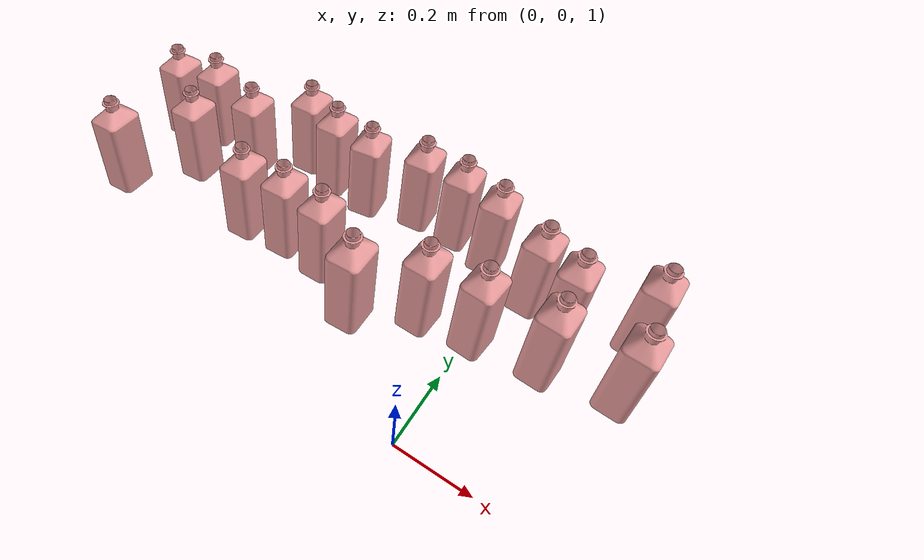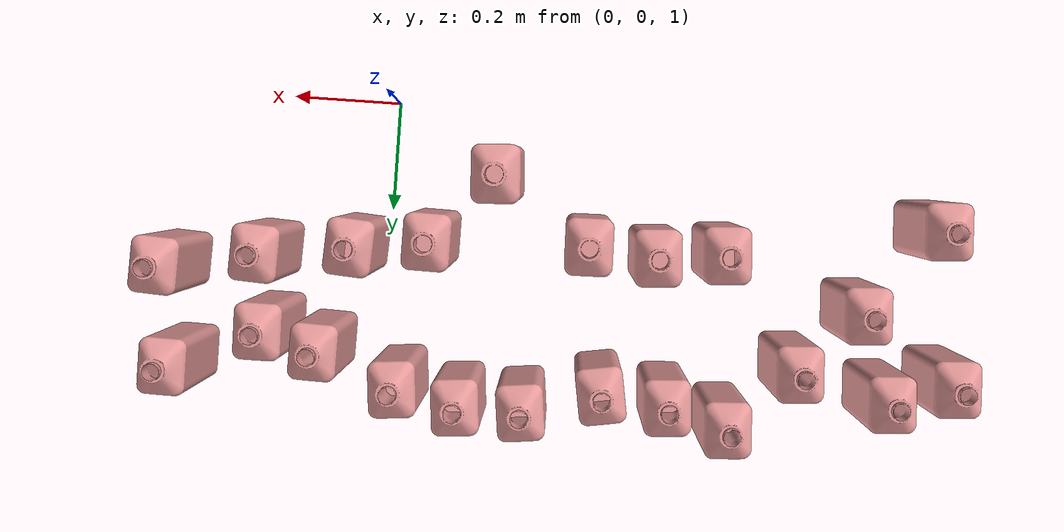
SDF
<sdf version="1.7">
 <world name="default">
  <plugin name="attach_detach_plugin" filename="libattach_detach.so"/>
  <gravity>0 0 -9.8</gravity>
  <physics name="default_physics" default="0" type="ode">
   <max_step_size>0.001</max_step_size>
   <real_time_factor>1</real_time_factor>
   <real_time_update_rate>1000</real_time_update_rate>
  </physics>
  <light name="Warehouse_CeilingLight_003" type="point">
   <pose>0 0 9 0 -0 0</pose>
   <diffuse>0.5 0.5 0.5 1</diffuse>
   <specular>0.2 0.2 0.2 1</specular>
   <attenuation>
    <range>80</range>
    <constant>0.3</constant>
    <linear>0.01</linear>
    <quadratic>0.001</quadratic>
   </attenuation>
   <direction>0.1 0.1 -1</direction>
   <spot><inner_angle>0</inner_angle><outer_angle>0</outer_angle><falloff>0</falloff></spot>
  </light>
  <magnetic_field>6e-06 2.3e-05 -4.2e-05</magnetic_field>
  <atmosphere type="adiabatic"/>
  <scene><ambient>0.4 0.4 0.4 1</ambient><background>0.7 0.7 0.7 1</background><shadows>1</shadows></scene>
  <audio><device>default</device></audio>
  <spherical_coordinates>
   <surface_model>EARTH_WGS84</surface_model>
   <latitude_deg>0</latitude_deg>
   <longitude_deg>0</longitude_deg>
   <elevation>0</elevation>
   <heading_deg>0</heading_deg>
  </spherical_coordinates>
  <model name="medicine_box">
   <static>0</static>
   <link name="link">
    <inertial>
     <mass>0.1</mass>
     <inertia><ixx>0.0001</ixx><iyy>0.0001</iyy><izz>0.0001</izz><ixy>0</ixy><ixz>0</ixz><iyz>0</iyz></inertia>
    </inertial>
    <visual name="visual">
     <geometry>
      <mesh><uri>model://medicine_box/meshes/medicine_box.stl</uri><scale>0.001 0.001 0.001</scale></mesh>
     </geometry>
     <material><ambient>0.9 0.3 0.3 1</ambient><diffuse>0.9 0.6 0.6 1</diffuse></material>
    </visual>
    <collision name="collision"><geometry><box><size>0.08 0.04 0.02</size></box></geometry></collision>
   </link>
   <pose>0.029138 0.263219 1.10898 1.48879 -0.005494 -0.066749</pose>
  </model>
  <model name="medicine_box_0">
   <static>0</static>
   <link name="link">
    <inertial>
     <mass>0.1</mass>
     <inertia><ixx>0.0001</ixx><iyy>0.0001</iyy><izz>0.0001</izz><ixy>0</ixy><ixz>0</ixz><iyz>0</iyz></inertia>
    </inertial>
    <visual name="visual">
     <geometry>
      <mesh><uri>model://medicine_box/meshes/medicine_box.stl</uri><scale>0.001 0.001 0.001</scale></mesh>
     </geometry>
     <material><ambient>0.9 0.3 0.3 1</ambient><diffuse>0.9 0.6 0.6 1</diffuse></material>
    </visual>
    <collision name="collision"><geometry><box><size>0.08 0.04 0.02</size></box></geometry></collision>
   </link>
   <pose>-0.208023 0.130326 1.17676 1.48871 0.004076 0.051414</pose>
  </model>
  <model name="medicine_box_clone">
   <static>0</static>
   <link name="link">
    <inertial>
     <mass>0.1</mass>
     <inertia><ixx>0.0001</ixx><iyy>0.0001</iyy><izz>0.0001</izz><ixy>0</ixy><ixz>0</ixz><iyz>0</iyz></inertia>
    </inertial>
    <visual name="visual">
     <geometry>
      <mesh><uri>model://medicine_box/meshes/medicine_box.stl</uri><scale>0.001 0.001 0.001</scale></mesh>
     </geometry>
     <material><ambient>0.9 0.3 0.3 1</ambient><diffuse>0.9 0.6 0.6 1</diffuse></material>
    </visual>
    <collision name="collision"><geometry><box><size>0.08 0.04 0.02</size></box></geometry></collision>
   </link>
   <pose>0.172631 0.412649 1.09667 1.48861 0.000118 0.00143</pose>
  </model>
  <model name="medicine_box_0_clone">
   <static>0</static>
   <link name="link">
    <inertial>
     <mass>0.1</mass>
     <inertia><ixx>0.0001</ixx><iyy>0.0001</iyy><izz>0.0001</izz><ixy>0</ixy><ixz>0</ixz><iyz>0</iyz></inertia>
    </inertial>
    <visual name="visual">
     <geometry>
      <mesh><uri>model://medicine_box/meshes/medicine_box.stl</uri><scale>0.001 0.001 0.001</scale></mesh>
     </geometry>
     <material><ambient>0.9 0.3 0.3 1</ambient><diffuse>0.9 0.6 0.6 1</diffuse></material>
    </visual>
    <collision name="collision"><geometry><box><size>0.08 0.04 0.02</size></box></geometry></collision>
   </link>
   <pose>-0.161614 0.51702 1.08807 1.48891 0.007069 0.085429</pose>
  </model>
  <model name="medicine_box_0_clone_clone">
   <static>0</static>
   <link name="link">
    <inertial>
     <mass>0.1</mass>
     <inertia><ixx>0.0001</ixx><iyy>0.0001</iyy><izz>0.0001</izz><ixy>0</ixy><ixz>0</ixz><iyz>0</iyz></inertia>
    </inertial>
    <visual name="visual">
     <geometry>
      <mesh><uri>model://medicine_box/meshes/medicine_box.stl</uri><scale>0.001 0.001 0.001</scale></mesh>
     </geometry>
     <material><ambient>0.9 0.3 0.3 1</ambient><diffuse>0.9 0.6 0.6 1</diffuse></material>
    </visual>
    <collision name="collision"><geometry><box><size>0.08 0.04 0.02</size></box></geometry></collision>
   </link>
   <pose>-0.270931 0.518319 1.08797 1.48916 0.009483 0.115383</pose>
  </model>
  <model name="medicine_box_0_clone_clone_0">
   <static>0</static>
   <link name="link">
    <inertial>
     <mass>0.1</mass>
     <inertia><ixx>0.0001</ixx><iyy>0.0001</iyy><izz>0.0001</izz><ixy>0</ixy><ixz>0</ixz><iyz>0</iyz></inertia>
    </inertial>
    <visual name="visual">
     <geometry>
      <mesh><uri>model://medicine_box/meshes/medicine_box.stl</uri><scale>0.001 0.001 0.001</scale></mesh>
     </geometry>
     <material><ambient>0.9 0.3 0.3 1</ambient><diffuse>0.9 0.6 0.6 1</diffuse></material>
    </visual>
    <collision name="collision"><geometry><box><size>0.08 0.04 0.02</size></box></geometry></collision>
   </link>
   <pose>-0.403211 0.480747 1.09106 1.48976 0.013722 0.167375</pose>
  </model>
  <model name="medicine_box_0_clone_clone_1">
   <static>0</static>
   <link name="link">
    <inertial>
     <mass>0.1</mass>
     <inertia><ixx>0.0001</ixx><iyy>0.0001</iyy><izz>0.0001</izz><ixy>0</ixy><ixz>0</ixz><iyz>0</iyz></inertia>
    </inertial>
    <visual name="visual">
     <geometry>
      <mesh><uri>model://medicine_box/meshes/medicine_box.stl</uri><scale>0.001 0.001 0.001</scale></mesh>
     </geometry>
     <material><ambient>0.9 0.3 0.3 1</ambient><diffuse>0.9 0.6 0.6 1</diffuse></material>
    </visual>
    <collision name="collision"><geometry><box><size>0.08 0.04 0.02</size></box></geometry></collision>
   </link>
   <pose>-0.618018 0.523674 1.08752 1.48878 0.005235 0.063776</pose>
  </model>
  <model name="medicine_box_0_clone_clone_2">
   <static>0</static>
   <link name="link">
    <inertial>
     <mass>0.1</mass>
     <inertia><ixx>0.0001</ixx><iyy>0.0001</iyy><izz>0.0001</izz><ixy>0</ixy><ixz>0</ixz><iyz>0</iyz></inertia>
    </inertial>
    <visual name="visual">
     <geometry>
      <mesh><uri>model://medicine_box/meshes/medicine_box.stl</uri><scale>0.001 0.001 0.001</scale></mesh>
     </geometry>
     <material><ambient>0.9 0.3 0.3 1</ambient><diffuse>0.9 0.6 0.6 1</diffuse></material>
    </visual>
    <collision name="collision"><geometry><box><size>0.08 0.04 0.02</size></box></geometry></collision>
   </link>
   <pose>0.078814 0.440722 1.09435 1.48862 -0.002278 -0.027653</pose>
  </model>
  <model name="medicine_box_0_clone_clone_3">
   <static>0</static>
   <link name="link">
    <inertial>
     <mass>0.1</mass>
     <inertia><ixx>0.0001</ixx><iyy>0.0001</iyy><izz>0.0001</izz><ixy>0</ixy><ixz>0</ixz><iyz>0</iyz></inertia>
    </inertial>
    <visual name="visual">
     <geometry>
      <mesh><uri>model://medicine_box/meshes/medicine_box.stl</uri><scale>0.001 0.001 0.001</scale></mesh>
     </geometry>
     <material><ambient>0.9 0.3 0.3 1</ambient><diffuse>0.9 0.6 0.6 1</diffuse></material>
    </visual>
    <collision name="collision"><geometry><box><size>0.08 0.04 0.02</size></box></geometry></collision>
   </link>
   <pose>-0.055196 0.494086 1.08996 1.48891 0.006929 0.084482</pose>
  </model>
  <model name="medicine_box_0_clone_clone_4">
   <static>0</static>
   <link name="link">
    <inertial>
     <mass>0.1</mass>
     <inertia><ixx>0.0001</ixx><iyy>0.0001</iyy><izz>0.0001</izz><ixy>0</ixy><ixz>0</ixz><iyz>0</iyz></inertia>
    </inertial>
    <visual name="visual">
     <geometry>
      <mesh><uri>model://medicine_box/meshes/medicine_box.stl</uri><scale>0.001 0.001 0.001</scale></mesh>
     </geometry>
     <material><ambient>0.9 0.3 0.3 1</ambient><diffuse>0.9 0.6 0.6 1</diffuse></material>
    </visual>
    <collision name="collision"><geometry><box><size>0.08 0.04 0.02</size></box></geometry></collision>
   </link>
   <pose>0.184435 0.283386 1.10731 1.48871 -0.003985 -0.0498</pose>
  </model>
  <model name="medicine_box_0_clone_clone_5">
   <static>0</static>
   <link name="link">
    <inertial>
     <mass>0.1</mass>
     <inertia><ixx>0.0001</ixx><iyy>0.0001</iyy><izz>0.0001</izz><ixy>0</ixy><ixz>0</ixz><iyz>0</iyz></inertia>
    </inertial>
    <visual name="visual">
     <geometry>
      <mesh><uri>model://medicine_box/meshes/medicine_box.stl</uri><scale>0.001 0.001 0.001</scale></mesh>
     </geometry>
     <material><ambient>0.9 0.3 0.3 1</ambient><diffuse>0.9 0.6 0.6 1</diffuse></material>
    </visual>
    <collision name="collision"><geometry><box><size>0.08 0.04 0.02</size></box></geometry></collision>
   </link>
   <pose>-0.098095 0.245801 1.11041 1.48862 -0.001088 -0.013203</pose>
  </model>
  <model name="medicine_box_0_clone_clone_6">
   <static>0</static>
   <link name="link">
    <inertial>
     <mass>0.1</mass>
     <inertia><ixx>0.0001</ixx><iyy>0.0001</iyy><izz>0.0001</izz><ixy>0</ixy><ixz>0</ixz><iyz>0</iyz></inertia>
    </inertial>
    <visual name="visual">
     <geometry>
      <mesh><uri>model://medicine_box/meshes/medicine_box.stl</uri><scale>0.001 0.001 0.001</scale></mesh>
     </geometry>
     <material><ambient>0.9 0.3 0.3 1</ambient><diffuse>0.9 0.6 0.6 1</diffuse></material>
    </visual>
    <collision name="collision"><geometry><box><size>0.08 0.04 0.02</size></box></geometry></collision>
   </link>
   <pose>0.349052 0.314463 1.10475 1.4887 -0.004165 -0.050586</pose>
  </model>
  <model name="medicine_box_0_clone_clone_7">
   <static>0</static>
   <link name="link">
    <inertial>
     <mass>0.1</mass>
     <inertia><ixx>0.0001</ixx><iyy>0.0001</iyy><izz>0.0001</izz><ixy>0</ixy><ixz>0</ixz><iyz>0</iyz></inertia>
    </inertial>
    <visual name="visual">
     <geometry>
      <mesh><uri>model://medicine_box/meshes/medicine_box.stl</uri><scale>0.001 0.001 0.001</scale></mesh>
     </geometry>
     <material><ambient>0.9 0.3 0.3 1</ambient><diffuse>0.9 0.6 0.6 1</diffuse></material>
    </visual>
    <collision name="collision"><geometry><box><size>0.08 0.04 0.02</size></box></geometry></collision>
   </link>
   <pose>-0.366746 0.235788 1.11124 1.48863 0.001657 0.020112</pose>
  </model>
  <model name="medicine_box_0_clone_clone_8">
   <static>0</static>
   <link name="link">
    <inertial>
     <mass>0.1</mass>
     <inertia><ixx>0.0001</ixx><iyy>0.0001</iyy><izz>0.0001</izz><ixy>0</ixy><ixz>0</ixz><iyz>0</iyz></inertia>
    </inertial>
    <visual name="visual">
     <geometry>
      <mesh><uri>model://medicine_box/meshes/medicine_box.stl</uri><scale>0.001 0.001 0.001</scale></mesh>
     </geometry>
     <material><ambient>0.9 0.3 0.3 1</ambient><diffuse>0.9 0.6 0.6 1</diffuse></material>
    </visual>
    <collision name="collision"><geometry><box><size>0.08 0.04 0.02</size></box></geometry></collision>
   </link>
   <pose>0.328295 0.481444 1.091 1.48862 -0.001429 -0.017347</pose>
  </model>
  <model name="medicine_box_0_clone_clone_1_clone">
   <static>0</static>
   <link name="link">
    <inertial>
     <mass>0.1</mass>
     <inertia><ixx>0.0001</ixx><iyy>0.0001</iyy><izz>0.0001</izz><ixy>0</ixy><ixz>0</ixz><iyz>0</iyz></inertia>
    </inertial>
    <visual name="visual">
     <geometry>
      <mesh><uri>model://medicine_box/meshes/medicine_box.stl</uri><scale>0.001 0.001 0.001</scale></mesh>
     </geometry>
     <material><ambient>0.9 0.3 0.3 1</ambient><diffuse>0.9 0.6 0.6 1</diffuse></material>
    </visual>
    <collision name="collision"><geometry><box><size>0.08 0.04 0.02</size></box></geometry></collision>
   </link>
   <pose>-0.481357 0.24628 1.11037 1.48878 0.005299 0.064371</pose>
  </model>
  <model name="medicine_box_0_clone_clone_1_clone_clone">
   <static>0</static>
   <link name="link">
    <inertial>
     <mass>0.1</mass>
     <inertia><ixx>0.0001</ixx><iyy>0.0001</iyy><izz>0.0001</izz><ixy>0</ixy><ixz>0</ixz><iyz>0</iyz></inertia>
    </inertial>
    <visual name="visual">
     <geometry>
      <mesh><uri>model://medicine_box/meshes/medicine_box.stl</uri><scale>0.001 0.001 0.001</scale></mesh>
     </geometry>
     <material><ambient>0.9 0.3 0.3 1</ambient><diffuse>0.9 0.6 0.6 1</diffuse></material>
    </visual>
    <collision name="collision"><geometry><box><size>0.08 0.04 0.02</size></box></geometry></collision>
   </link>
   <pose>-0.730407 0.422509 1.09586 1.48878 0.00529 0.064262</pose>
  </model>
  <model name="medicine_box_0_clone_clone_1_clone_clone_0">
   <static>0</static>
   <link name="link">
    <inertial>
     <mass>0.1</mass>
     <inertia><ixx>0.0001</ixx><iyy>0.0001</iyy><izz>0.0001</izz><ixy>0</ixy><ixz>0</ixz><iyz>0</iyz></inertia>
    </inertial>
    <visual name="visual">
     <geometry>
      <mesh><uri>model://medicine_box/meshes/medicine_box.stl</uri><scale>0.001 0.001 0.001</scale></mesh>
     </geometry>
     <material><ambient>0.9 0.3 0.3 1</ambient><diffuse>0.9 0.6 0.6 1</diffuse></material>
    </visual>
    <collision name="collision"><geometry><box><size>0.08 0.04 0.02</size></box></geometry></collision>
   </link>
   <pose>-0.887637 0.462427 1.09256 1.48878 0.00541 0.064335</pose>
  </model>
  <model name="medicine_box_0_clone_clone_1_clone_clone_1">
   <static>0</static>
   <link name="link">
    <inertial>
     <mass>0.1</mass>
     <inertia><ixx>0.0001</ixx><iyy>0.0001</iyy><izz>0.0001</izz><ixy>0</ixy><ixz>0</ixz><iyz>0</iyz></inertia>
    </inertial>
    <visual name="visual">
     <geometry>
      <mesh><uri>model://medicine_box/meshes/medicine_box.stl</uri><scale>0.001 0.001 0.001</scale></mesh>
     </geometry>
     <material><ambient>0.9 0.3 0.3 1</ambient><diffuse>0.9 0.6 0.6 1</diffuse></material>
    </visual>
    <collision name="collision"><geometry><box><size>0.08 0.04 0.02</size></box></geometry></collision>
   </link>
   <pose>-0.99266 0.429814 1.09526 1.48878 0.005287 0.064227</pose>
  </model>
  <model name="medicine_box_0_clone_clone_1_clone_clone_2">
   <static>0</static>
   <link name="link">
    <inertial>
     <mass>0.1</mass>
     <inertia><ixx>0.0001</ixx><iyy>0.0001</iyy><izz>0.0001</izz><ixy>0</ixy><ixz>0</ixz><iyz>0</iyz></inertia>
    </inertial>
    <visual name="visual">
     <geometry>
      <mesh><uri>model://medicine_box/meshes/medicine_box.stl</uri><scale>0.001 0.001 0.001</scale></mesh>
     </geometry>
     <material><ambient>0.9 0.3 0.3 1</ambient><diffuse>0.9 0.6 0.6 1</diffuse></material>
    </visual>
    <collision name="collision"><geometry><box><size>0.08 0.04 0.02</size></box></geometry></collision>
   </link>
   <pose>-0.594878 0.234505 1.11134 1.48879 0.005382 0.065379</pose>
  </model>
  <model name="medicine_box_0_clone_clone_1_clone_clone_3">
   <static>0</static>
   <link name="link">
    <inertial>
     <mass>0.1</mass>
     <inertia><ixx>0.0001</ixx><iyy>0.0001</iyy><izz>0.0001</izz><ixy>0</ixy><ixz>0</ixz><iyz>0</iyz></inertia>
    </inertial>
    <visual name="visual">
     <geometry>
      <mesh><uri>model://medicine_box/meshes/medicine_box.stl</uri><scale>0.001 0.001 0.001</scale></mesh>
     </geometry>
     <material><ambient>0.9 0.3 0.3 1</ambient><diffuse>0.9 0.6 0.6 1</diffuse></material>
    </visual>
    <collision name="collision"><geometry><box><size>0.08 0.04 0.02</size></box></geometry></collision>
   </link>
   <pose>-0.514877 0.49321 1.09003 1.48881 0.005332 0.064831</pose>
  </model>
  <model name="medicine_box_0_clone_clone_1_clone_clone_4">
   <static>0</static>
   <link name="link">
    <inertial>
     <mass>0.1</mass>
     <inertia><ixx>0.0001</ixx><iyy>0.0001</iyy><izz>0.0001</izz><ixy>0</ixy><ixz>0</ixz><iyz>0</iyz></inertia>
    </inertial>
    <visual name="visual">
     <geometry>
      <mesh><uri>model://medicine_box/meshes/medicine_box.stl</uri><scale>0.001 0.001 0.001</scale></mesh>
     </geometry>
     <material><ambient>0.9 0.3 0.3 1</ambient><diffuse>0.9 0.6 0.6 1</diffuse></material>
    </visual>
    <collision name="collision"><geometry><box><size>0.08 0.04 0.02</size></box></geometry></collision>
   </link>
   <pose>-0.835 0.318029 1.10446 1.48879 0.005443 0.064627</pose>
  </model>
  <model name="medicine_box_0_clone_clone_1_clone_clone_5">
   <static>0</static>
   <link name="link">
    <inertial>
     <mass>0.1</mass>
     <inertia><ixx>0.0001</ixx><iyy>0.0001</iyy><izz>0.0001</izz><ixy>0</ixy><ixz>0</ixz><iyz>0</iyz></inertia>
    </inertial>
    <visual name="visual">
     <geometry>
      <mesh><uri>model://medicine_box/meshes/medicine_box.stl</uri><scale>0.001 0.001 0.001</scale></mesh>
     </geometry>
     <material><ambient>0.9 0.3 0.3 1</ambient><diffuse>0.9 0.6 0.6 1</diffuse></material>
    </visual>
    <collision name="collision"><geometry><box><size>0.08 0.04 0.02</size></box></geometry></collision>
   </link>
   <pose>-0.954375 0.170452 1.11662 1.48878 0.005306 0.064464</pose>
  </model>
 </world>
</sdf>
